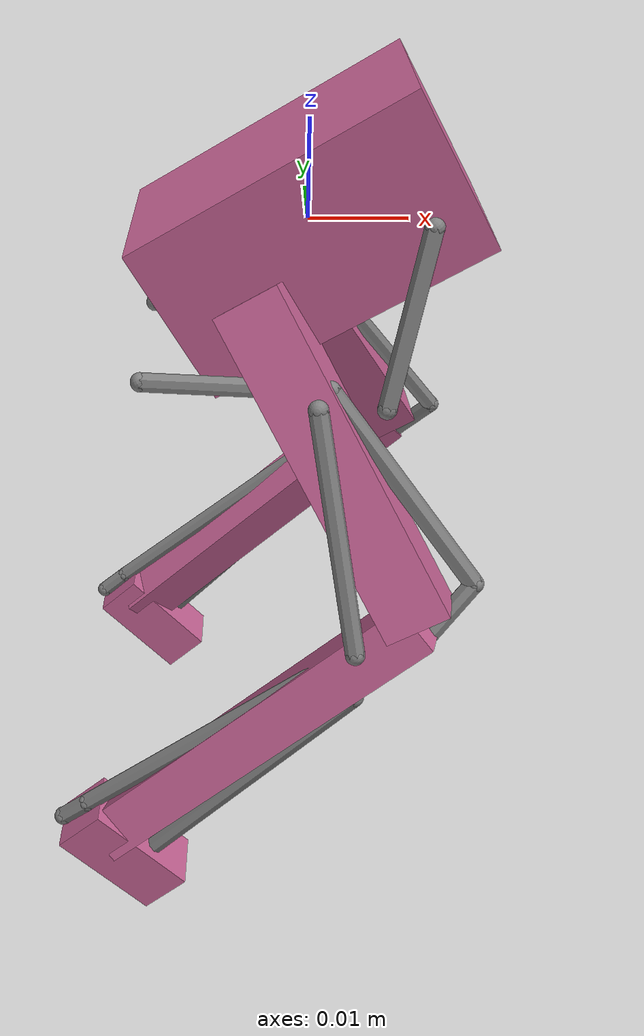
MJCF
<mujoco>
  <compiler coordinate="local" angle="radian" eulerseq="xyz" />
  <default>
    <geom rgba=".8 .4 .6 1" />
  </default>
  <option collision="predefined" />
  <asset>
    <texture type="skybox" builtin="gradient" rgb1="1 1 1" rgb2=".6 .8 1" width="256" height="256" />
  </asset>
  <worldbody>
    <geom name="floor" pos="0 0 -0.5" size="1 1 0.125" type="plane" condim="3" rgba="1 1 1 1" />
    <light pos="0 5 5" dir="0 -1 -1" diffuse="1 1 1" />
    <body name="Pelvis" pos="0.0 0.0 0.0" euler="3.1417963267948963 0.5236 -3.142">
      <geom type="box" size="0.0155 0.01 0.0085" mass="0.03182" density="3019.0" />
      <site name="RH_HipZ Extensor Pelvis" pos="0.021056 -0.009983 0.003217" size="0.001 0.001 0.001" />
      <site name="LH_HipZ Extensor Pelvis" pos="0.02104 0.010017 0.003217" size="0.001 0.001 0.001" />
      <site name="RH_HipZ Flexor Pelvis" pos="-0.011092 -0.010009 0.003434" size="0.001 0.001 0.001" />
      <body name="RH_Femur" pos="0.007105 -0.015901 0.017895" euler="-1.234 0.0 0.0">
        <geom type="box" size="0.00345 0.0179 0.00345" mass="0.014142" density="8297.0" />
        <site name="RH_Knee Extensor Femur Mid" pos="0.000452 -0.020257 0.001315" size="0.001 0.001 0.001" />
        <site name="RH_Knee Flexor Femur" pos="-0.001583 0.005881 -0.004022" size="0.001 0.001 0.001" />
        <site name="RH_HipZ Flexor Femur" pos="-0.006624 0.002423 0.000701" size="0.001 0.001 0.001" />
        <site name="RH_Knee Extensor Femur" pos="-0.003014 0.006724 -0.001609" size="0.001 0.001 0.001" />
        <site name="RH_Knee Extensor Femur Mid2" pos="-0.006078 -0.017531 0.00256" size="0.001 0.001 0.001" />
        <body name="RH_Tibia" pos="0.021978 -0.022329 0.001782" euler="0.0 -0.080285 -0.20071">
          <geom type="box" size="0.02244 0.00275 0.00275" mass="0.0033380000000000003" density="2459.0" />
          <site name="RH_AnkleZ Extensor Tibia" pos="-0.012661 0.001634 -0.001724" size="0.001 0.001 0.001" />
          <site name="RH_AnkleZ Extensor Tibia Mid" pos="0.02083 0.004207 -0.001674" size="0.001 0.001 0.001" />
          <body name="RH_Foot" pos="0.022378 -0.002727 0.000897" euler="-0.34907 0.0 0.0">
            <geom type="box" size="0.0031 0.0068 0.0031" mass="0.001571" density="3005.0" />
            <site name="RH_AnkleZ Extensor Foot" pos="0.002167 0.007587 0.000173" size="0.001 0.001 0.001" />
            <site name="RH_AnkleZ Flexor Foot" pos="0.001939 -0.002013 -0.000994" size="0.001 0.001 0.001" />
            <joint name="RH_AnkleZ" pos="0.0001 0.0028 0.0002" axis="0 0 1" limited="true" range="-1.39626 0.436332" />
          </body>
          <site name="RH_Knee Flexor Tibia" pos="-0.016477 0.001729 -0.004386" size="0.001 0.001 0.001" />
          <site name="RH_AnkleZ Flexor Tibia" pos="-0.011594 -0.002965 -7.7413e-05" size="0.001 0.001 0.001" />
          <site name="RH_Knee Extensor Tibia" pos="-0.015982 0.000219 0.000492" size="0.001 0.001 0.001" />
          <joint name="RH_Knee" pos="-0.02244 0.0 0.0" axis="0 0 1" limited="true" range="-1.39626 1.0472" />
        </body>
        <site name="RH_HipZ Extensor Femur" pos="0.000552 0.007969 0.001961" size="0.001 0.001 0.001" />
        <joint name="RH_HipZ" pos="0.0 0.0179 0.0" axis="0 0 1" limited="true" range="-1.0472 0.872665" />
      </body>
      <body name="LH_Femur" pos="0.007095 0.015899 0.017901" euler="-1.902 0.0 0.0">
        <geom type="box" size="0.00345 0.0179 0.00345" mass="0.014142" density="8297.0" />
        <site name="LH_Knee Extensor Femur" pos="-0.003025 0.006735 0.001581" size="0.001 0.001 0.001" />
        <site name="LH_HipZ Extensor Femur" pos="0.000548 0.00796 -0.00199" size="0.001 0.001 0.001" />
        <site name="LH_HipZ Flexor Femur" pos="-0.006631 0.002421 -0.000711" size="0.001 0.001 0.001" />
        <site name="LH_Knee Flexor Femur" pos="-0.001597 0.005904 0.004001" size="0.001 0.001 0.001" />
        <body name="LH_Tibia" pos="0.021975 -0.022342 -0.001652" euler="0.0 0.080285 -0.20071">
          <geom type="box" size="0.02244 0.00275 0.00275" mass="0.0033380000000000003" density="2459.0" />
          <site name="LH_AnkleZ Extensor Tibia" pos="-0.012677 0.001657 0.001729" size="0.001 0.001 0.001" />
          <site name="LH_AnkleZ Extensor Tibia Mid" pos="0.020814 0.00423 0.001767" size="0.001 0.001 0.001" />
          <site name="LH_Knee Extensor Tibia" pos="-0.015991 0.000228 -0.00049" size="0.001 0.001 0.001" />
          <site name="LH_AnkleZ Flexor Tibia" pos="-0.011605 -0.002951 0.000111" size="0.001 0.001 0.001" />
          <site name="LH_Knee Flexor Tibia" pos="-0.016502 0.001766 0.004379" size="0.001 0.001 0.001" />
          <body name="LH_Foot" pos="0.022377 -0.002746 -0.000848" euler="0.34907 0.0 0.0">
            <geom type="box" size="0.0031 0.0068 0.0031" mass="0.001571" density="3005.0" />
            <site name="LH_AnkleZ Extensor Foot" pos="0.002148 0.007645 -0.000136" size="0.001 0.001 0.001" />
            <site name="LH_AnkleZ Flexor Foot" pos="0.001936 -0.001947 0.001083" size="0.001 0.001 0.001" />
            <joint name="LH_AnkleZ" pos="0.0001 0.0029 -0.0001" axis="0 0 1" limited="true" range="-1.39626 0.436332" />
          </body>
          <joint name="LH_Knee" pos="-0.02244 0.0 0.0" axis="0 0 1" limited="true" range="-1.39626 1.0472" />
        </body>
        <site name="LH_Knee Extensor Femur mid" pos="0.000443 -0.020263 -0.001186" size="0.001 0.001 0.001" />
        <site name="LH_Knee Extensor Femur Mid2" pos="-0.006086 -0.017544 -0.002457" size="0.001 0.001 0.001" />
        <joint name="LH_HipZ" pos="-7.78e-09 0.0179 6.54e-07" axis="0 0 1" limited="true" range="-1.0472 0.872665" />
      </body>
      <site name="LH_HipZ Flexor Pelvis" pos="-0.011108 0.009991 0.003434" size="0.001 0.001 0.001" />
    </body>
  </worldbody>
  <actuator>
    <muscle name="LH_HipZ-Extmuscle" tendon="LH_HipZ-Exttendon" force="1.0" range="0.0 0.1" timeconst="0.01 0.04" lmin="-0.3724" lmax="2.3724" vmax="10.0" fpmax="1.0" fvmax="1.0"/>
    <muscle name="RH_Knee-Flxmuscle" tendon="RH_Knee-Flxtendon"  />
    <muscle name="RH_AnkleZ-Flxmuscle" tendon="RH_AnkleZ-Flxtendon" />
    <muscle name="RH_AnkleZ-Extmuscle" tendon="RH_AnkleZ-Exttendon" />
    <muscle name="RH_Knee-Extmuscle" tendon="RH_Knee-Exttendon" />
    <muscle name="RH_HipZ-Extmuscle" tendon="RH_HipZ-Exttendon" force="1.0" range="0.0 0.1" timeconst="0.01 0.04" lmin="-0.3724" lmax="2.3724" vmax="10.0" fpmax="1.0" fvmax="1.0"/>
    <muscle name="LH_Knee-Extmuscle" tendon="LH_Knee-Exttendon" />
    <muscle name="LH_AnkleZ-Extmuscle" tendon="LH_AnkleZ-Exttendon" />
    <muscle name="LH_AnkleZ-Flxmuscle" tendon="LH_AnkleZ-Flxtendon" />
    <muscle name="LH_Knee-Flxmuscle" tendon="LH_Knee-Flxtendon" />
    <muscle name="LH_HipZ-Flxmuscle" tendon="LH_HipZ-Flxtendon" force="16.7" range="0.0 0.1" timeconst="0.01 0.04" lmin="-0.5039" lmax="2.5039" vmax="10.0" fpmax="1.0" fvmax="1.0" />
    <muscle name="RH_HipZ-Flxmuscle" tendon="RH_HipZ-Flxtendon" force="16.7" range="0.0 0.1" timeconst="0.01 0.04" lmin="-0.5039" lmax="2.5039" vmax="10.0" fpmax="1.0" fvmax="1.0"/>
  </actuator>
 <tendon>
    <spatial name="LH_HipZ-Exttendon" width="0.001">
      <site site="LH_HipZ Extensor Pelvis" />
      <site site="LH_HipZ Extensor Femur" />
    </spatial>
    <spatial name="RH_Knee-Flxtendon" width="0.001">
      <site site="RH_Knee Flexor Femur" />
      <site site="RH_Knee Flexor Tibia" />
    </spatial>
    <spatial name="RH_AnkleZ-Flxtendon" width="0.001">
      <site site="RH_AnkleZ Flexor Tibia" />
      <site site="RH_AnkleZ Flexor Foot" />
    </spatial>
    <spatial name="RH_AnkleZ-Exttendon" width="0.001">
      <site site="RH_AnkleZ Extensor Tibia" />
      <site site="RH_AnkleZ Extensor Tibia Mid" />
      <site site="RH_AnkleZ Extensor Foot" />
    </spatial>
    <spatial name="RH_Knee-Exttendon" width="0.001">
      <site site="RH_Knee Extensor Femur" />
      <site site="RH_Knee Extensor Femur Mid2" />
      <site site="RH_Knee Extensor Femur Mid" />
      <site site="RH_Knee Extensor Tibia" />
    </spatial>
    <spatial name="RH_HipZ-Exttendon" width="0.001">
      <site site="RH_HipZ Extensor Pelvis" />
      <site site="RH_HipZ Extensor Femur" />
    </spatial>
    <spatial name="LH_Knee-Exttendon" width="0.001">
      <site site="LH_Knee Extensor Femur" />
      <site site="LH_Knee Extensor Femur Mid2" />
      <site site="LH_Knee Extensor Femur mid" />
      <site site="LH_Knee Extensor Tibia" />
    </spatial>
    <spatial name="LH_AnkleZ-Exttendon" width="0.001">
      <site site="LH_AnkleZ Extensor Tibia" />
      <site site="LH_AnkleZ Extensor Tibia Mid" />
      <site site="LH_AnkleZ Extensor Foot" />
    </spatial>
    <spatial name="LH_AnkleZ-Flxtendon" width="0.001">
      <site site="LH_AnkleZ Flexor Tibia" />
      <site site="LH_AnkleZ Flexor Foot" />
    </spatial>
    <spatial name="LH_Knee-Flxtendon" width="0.001">
      <site site="LH_Knee Flexor Femur" />
      <site site="LH_Knee Flexor Tibia" />
    </spatial>
    <spatial name="LH_HipZ-Flxtendon" width="0.001">
      <site site="LH_HipZ Flexor Pelvis" />
      <site site="LH_HipZ Flexor Femur" />
    </spatial>
    <spatial name="RH_HipZ-Flxtendon" width="0.001">
      <site site="RH_HipZ Flexor Pelvis" />
      <site site="RH_HipZ Flexor Femur" />
    </spatial>
  </tendon>
  <sensor>
    <actuatorfrc name="LH_HipZ-Extsensor" actuator="LH_HipZ-Extmuscle" />
    <actuatorfrc name="RH_Knee-Flxsensor" actuator="RH_Knee-Flxmuscle" />
    <actuatorfrc name="RH_AnkleZ-Flxsensor" actuator="RH_AnkleZ-Flxmuscle" />
    <actuatorfrc name="RH_AnkleZ-Extsensor" actuator="RH_AnkleZ-Extmuscle" />
    <actuatorfrc name="RH_Knee-Extsensor" actuator="RH_Knee-Extmuscle" />
    <actuatorfrc name="RH_HipZ-Extsensor" actuator="RH_HipZ-Extmuscle" />
    <actuatorfrc name="LH_Knee-Extsensor" actuator="LH_Knee-Extmuscle" />
    <actuatorfrc name="LH_AnkleZ-Extsensor" actuator="LH_AnkleZ-Extmuscle" />
    <actuatorfrc name="LH_AnkleZ-Flxsensor" actuator="LH_AnkleZ-Flxmuscle" />
    <actuatorfrc name="LH_Knee-Flxsensor" actuator="LH_Knee-Flxmuscle" />
    <actuatorfrc name="LH_HipZ-Flxsensor" actuator="LH_HipZ-Flxmuscle" />
    <actuatorfrc name="RH_HipZ-Flxsensor" actuator="RH_HipZ-Flxmuscle" />
  </sensor>
</mujoco>
